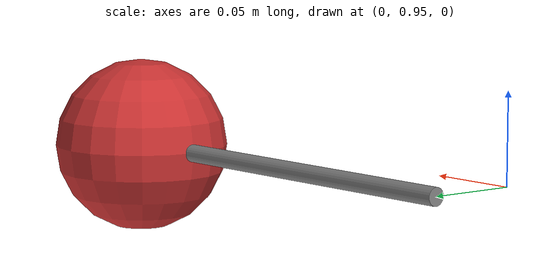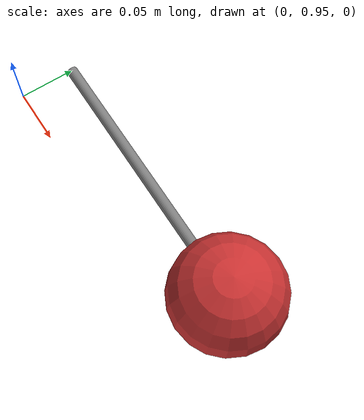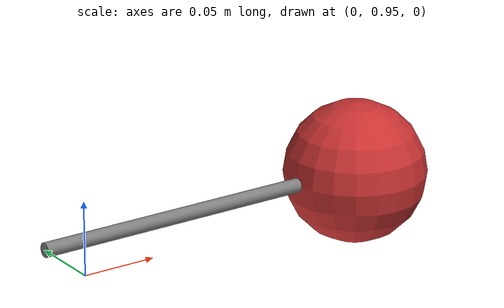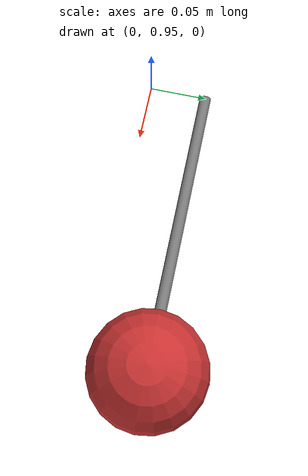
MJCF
<mujoco model="pendulum">
  <option gravity="0 -9.81 0" timestep="0.001" integrator="RK4"/>
  <asset>
    <texture name="tex" type="skybox" builtin="gradient" rgb1=".3 .5 .7" rgb2="0 0 0"/>
    <material name="mat" rgba=".8 .8 .8 1"/>
  </asset>
  <worldbody>
    <light diffuse=".5 .5 .5" pos="0 0 -3" dir="0 0 1"/>
    <body name="hinge_body" pos="0 1 0">
      <joint name="hinge" type="hinge" axis="0 0 1" damping="0" friction="0"/>
      <body name="rod" pos="0 0 0">
        <geom type="cylinder" size="0.005 0.12425" fromto="0 0 0 0.2485 0 0" mass="0" contype="0" conaffinity="0"/>
        <body name="bob" pos="0.2485 0 0">
          <geom type="sphere" size="0.05" mass="1.0" rgba="0.8 0.2 0.2 1"/>
        </body>
      </body>
    </body>
  </worldbody>
</mujoco>
